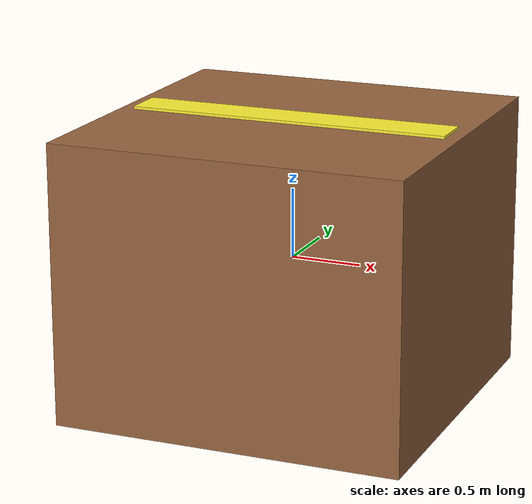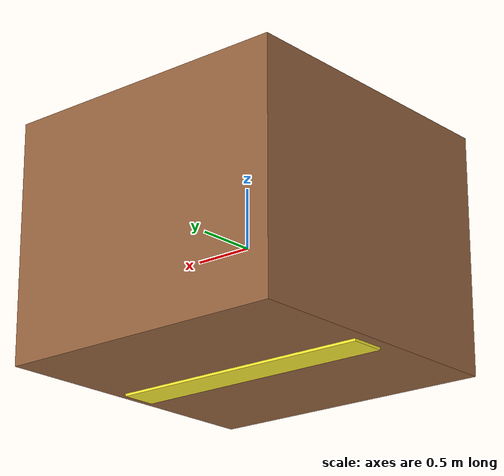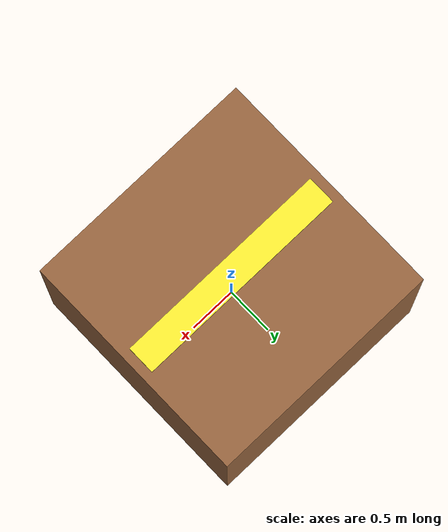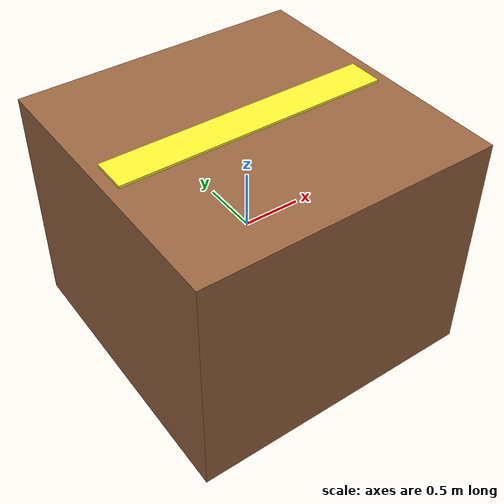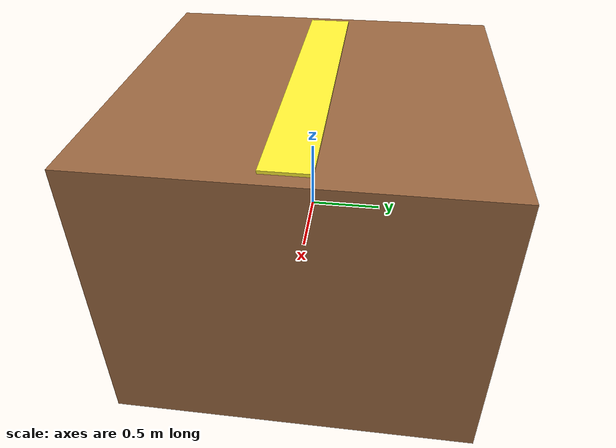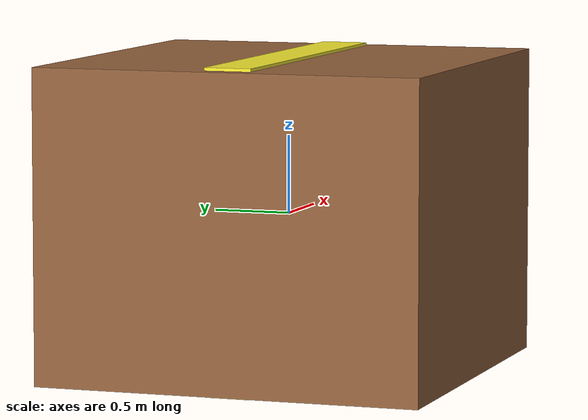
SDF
<?xml version="1.0"?>
<sdf version="1.7">
  <model name="pushable_obstacle">
    <!-- 事故封堵障碍物: 大型混凝土块/设备箱 -->
    <link name="obstacle_body">
      <!-- 惯性 -->
      <inertial>
        <mass>300.0</mass>
        <inertia>
          <ixx>250.0</ixx>
          <iyy>250.0</iyy>
          <izz>250.0</izz>
          <ixy>0</ixy>
          <ixz>0</ixz>
          <iyz>0</iyz>
        </inertia>
        <pose>0 0 0 0 0 0</pose>
      </inertial>

      <!-- 碰撞 -->
      <collision name="obstacle_collision">
        <geometry>
          <box>
            <size>2.5 2.5 2.0</size>
          </box>
        </geometry>
        <surface>
          <friction>
            <ode>
              <mu>0.6</mu>
              <mu2>0.6</mu2>
              <fdir1>0 0 0</fdir1>
              <slip1>0</slip1>
              <slip2>0</slip2>
            </ode>
          </friction>
          <contact>
            <ode>
              <kp>1e6</kp>
              <kd>100</kd>
            </ode>
          </contact>
        </surface>
        <max_contacts>10</max_contacts>
      </collision>

      <!-- 外观 -->
      <visual name="obstacle_visual">
        <geometry>
          <box>
            <size>2.5 2.5 2.0</size>
          </box>
        </geometry>
        <material>
          <ambient>0.45 0.3 0.2 1.0</ambient>
          <diffuse>0.6 0.4 0.25 1.0</diffuse>
          <specular>0.1 0.1 0.1 1.0</specular>
        </material>
      </visual>

      <!-- 警告条纹装饰 -->
      <visual name="stripe_visual">
        <pose>0 0 1.01 0 0 0</pose>
        <geometry>
          <box>
            <size>2.3 0.3 0.02</size>
          </box>
        </geometry>
        <material>
          <ambient>0.9 0.85 0.1 1.0</ambient>
          <diffuse>1.0 0.95 0.2 1.0</diffuse>
        </material>
      </visual>

      <visual name="stripe_visual2">
        <pose>0 0 -1.01 0 0 0</pose>
        <geometry>
          <box>
            <size>2.3 0.3 0.02</size>
          </box>
        </geometry>
        <material>
          <ambient>0.9 0.85 0.1 1.0</ambient>
          <diffuse>1.0 0.95 0.2 1.0</diffuse>
        </material>
      </visual>

    </link>
  </model>
</sdf>
